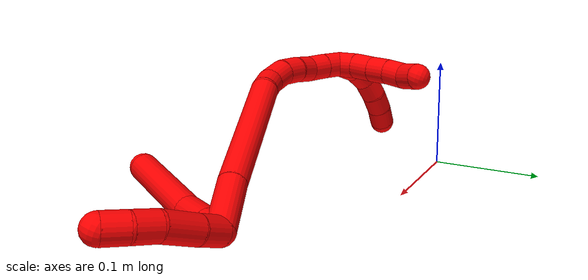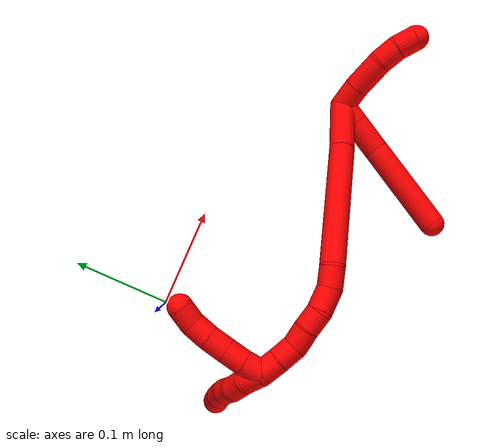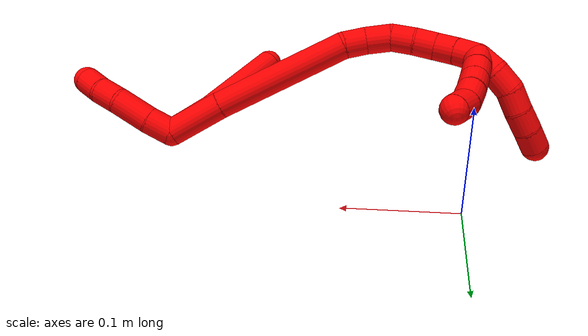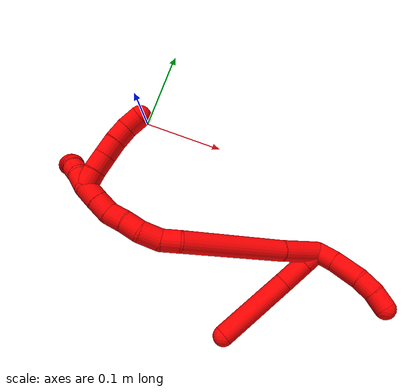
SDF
<sdf version="1.7">
 <world name="default">
  <model name="2">
   <static>0</static>
   <link name="2">
    <collision name="collision-cylinder-e_1_2_8">
     <pose>-0.006839 -0.002578 0.007982 0.312435 -0.683984 -0.112017</pose>
     <geometry><cylinder><radius>0.0125</radius><length>0.021646</length></cylinder></geometry>
     <surface>
      <friction><ode><mu>1.16</mu><mu2>1.16</mu2><slip1>0</slip1><slip2>0</slip2></ode></friction>
      <contact><ode><kp>1e+06</kp><kd>1</kd><max_vel>0</max_vel><min_depth>0.001</min_depth></ode></contact>
     </surface>
    </collision>
    <visual name="visual-cylinder-e_1_2_8">
     <pose>-0.006839 -0.002578 0.007982 0.312435 -0.683984 -0.112017</pose>
     <geometry><cylinder><radius>0.0125</radius><length>0.021646</length></cylinder></geometry>
     <material><ambient>1 0 0 1</ambient></material>
    </visual>
    <collision name="collision-cylinder-e_2_8_9">
     <pose>-0.024464 -0.009035 0.028682 0.295975 -0.681559 -0.105631</pose>
     <geometry><cylinder><radius>0.0125</radius><length>0.03424</length></cylinder></geometry>
     <surface>
      <friction><ode><mu>1.16</mu><mu2>1.16</mu2><slip1>0</slip1><slip2>0</slip2></ode></friction>
      <contact><ode><kp>1e+06</kp><kd>1</kd><max_vel>0</max_vel><min_depth>0.001</min_depth></ode></contact>
     </surface>
    </collision>
    <visual name="visual-cylinder-e_2_8_9">
     <pose>-0.024464 -0.009035 0.028682 0.295975 -0.681559 -0.105631</pose>
     <geometry><cylinder><radius>0.0125</radius><length>0.03424</length></cylinder></geometry>
     <material><ambient>1 0 0 1</ambient></material>
    </visual>
    <collision name="collision-cylinder-e_3_9_6">
     <pose>-0.065012 -0.017558 0.077551 0.127809 -0.684753 -0.045607</pose>
     <geometry><cylinder><radius>0.0125</radius><length>0.094114</length></cylinder></geometry>
     <surface>
      <friction><ode><mu>1.16</mu><mu2>1.16</mu2><slip1>0</slip1><slip2>0</slip2></ode></friction>
      <contact><ode><kp>1e+06</kp><kd>1</kd><max_vel>0</max_vel><min_depth>0.001</min_depth></ode></contact>
     </surface>
    </collision>
    <visual name="visual-cylinder-e_3_9_6">
     <pose>-0.065012 -0.017558 0.077551 0.127809 -0.684753 -0.045607</pose>
     <geometry><cylinder><radius>0.0125</radius><length>0.094114</length></cylinder></geometry>
     <material><ambient>1 0 0 1</ambient></material>
    </visual>
    <collision name="collision-cylinder-e_1_2_10">
     <pose>0.010418 0.002038 0.005236 -0.371157 1.07618 -0.223166</pose>
     <geometry><cylinder><radius>0.0125</radius><length>0.023674</length></cylinder></geometry>
     <surface>
      <friction><ode><mu>1.16</mu><mu2>1.16</mu2><slip1>0</slip1><slip2>0</slip2></ode></friction>
      <contact><ode><kp>1e+06</kp><kd>1</kd><max_vel>0</max_vel><min_depth>0.001</min_depth></ode></contact>
     </surface>
    </collision>
    <visual name="visual-cylinder-e_1_2_10">
     <pose>0.010418 0.002038 0.005236 -0.371157 1.07618 -0.223166</pose>
     <geometry><cylinder><radius>0.0125</radius><length>0.023674</length></cylinder></geometry>
     <material><ambient>1 0 0 1</ambient></material>
    </visual>
    <collision name="collision-cylinder-e_2_10_11">
     <pose>0.035016 0.006696 0.019677 -0.277361 0.977096 -0.148105</pose>
     <geometry><cylinder><radius>0.0125</radius><length>0.034213</length></cylinder></geometry>
     <surface>
      <friction><ode><mu>1.16</mu><mu2>1.16</mu2><slip1>0</slip1><slip2>0</slip2></ode></friction>
      <contact><ode><kp>1e+06</kp><kd>1</kd><max_vel>0</max_vel><min_depth>0.001</min_depth></ode></contact>
     </surface>
    </collision>
    <visual name="visual-cylinder-e_2_10_11">
     <pose>0.035016 0.006696 0.019677 -0.277361 0.977096 -0.148105</pose>
     <geometry><cylinder><radius>0.0125</radius><length>0.034213</length></cylinder></geometry>
     <material><ambient>1 0 0 1</ambient></material>
    </visual>
    <collision name="collision-cylinder-e_3_11_12">
     <pose>0.057618 0.008857 0.035452 0.069916 0.907105 0.034091</pose>
     <geometry><cylinder><radius>0.0125</radius><length>0.021386</length></cylinder></geometry>
     <surface>
      <friction><ode><mu>1.16</mu><mu2>1.16</mu2><slip1>0</slip1><slip2>0</slip2></ode></friction>
      <contact><ode><kp>1e+06</kp><kd>1</kd><max_vel>0</max_vel><min_depth>0.001</min_depth></ode></contact>
     </surface>
    </collision>
    <visual name="visual-cylinder-e_3_11_12">
     <pose>0.057618 0.008857 0.035452 0.069916 0.907105 0.034091</pose>
     <geometry><cylinder><radius>0.0125</radius><length>0.021386</length></cylinder></geometry>
     <material><ambient>1 0 0 1</ambient></material>
    </visual>
    <collision name="collision-cylinder-e_4_12_5">
     <pose>0.072849 0.006841 0.049681 0.2004 0.716693 0.07527</pose>
     <geometry><cylinder><radius>0.0125</radius><length>0.020727</length></cylinder></geometry>
     <surface>
      <friction><ode><mu>1.16</mu><mu2>1.16</mu2><slip1>0</slip1><slip2>0</slip2></ode></friction>
      <contact><ode><kp>1e+06</kp><kd>1</kd><max_vel>0</max_vel><min_depth>0.001</min_depth></ode></contact>
     </surface>
    </collision>
    <visual name="visual-cylinder-e_4_12_5">
     <pose>0.072849 0.006841 0.049681 0.2004 0.716693 0.07527</pose>
     <geometry><cylinder><radius>0.0125</radius><length>0.020727</length></cylinder></geometry>
     <material><ambient>1 0 0 1</ambient></material>
    </visual>
    <collision name="collision-cylinder-e_1_2_13">
     <pose>-0.021454 0.010495 0.007704 -0.937551 -1.02538 0.555402</pose>
     <geometry><cylinder><radius>0.0125</radius><length>0.050191</length></cylinder></geometry>
     <surface>
      <friction><ode><mu>1.16</mu><mu2>1.16</mu2><slip1>0</slip1><slip2>0</slip2></ode></friction>
      <contact><ode><kp>1e+06</kp><kd>1</kd><max_vel>0</max_vel><min_depth>0.001</min_depth></ode></contact>
     </surface>
    </collision>
    <visual name="visual-cylinder-e_1_2_13">
     <pose>-0.021454 0.010495 0.007704 -0.937551 -1.02538 0.555402</pose>
     <geometry><cylinder><radius>0.0125</radius><length>0.050191</length></cylinder></geometry>
     <material><ambient>1 0 0 1</ambient></material>
    </visual>
    <collision name="collision-cylinder-e_2_13_14">
     <pose>-0.097964 0.045965 0.031027 -1.01194 -1.0795 0.640992</pose>
     <geometry><cylinder><radius>0.0125</radius><length>0.124881</length></cylinder></geometry>
     <surface>
      <friction><ode><mu>1.16</mu><mu2>1.16</mu2><slip1>0</slip1><slip2>0</slip2></ode></friction>
      <contact><ode><kp>1e+06</kp><kd>1</kd><max_vel>0</max_vel><min_depth>0.001</min_depth></ode></contact>
     </surface>
    </collision>
    <visual name="visual-cylinder-e_2_13_14">
     <pose>-0.097964 0.045965 0.031027 -1.01194 -1.0795 0.640992</pose>
     <geometry><cylinder><radius>0.0125</radius><length>0.124881</length></cylinder></geometry>
     <material><ambient>1 0 0 1</ambient></material>
    </visual>
    <collision name="collision-cylinder-e_3_14_15">
     <pose>-0.163273 0.072605 0.048367 -0.768723 -1.34147 0.621099</pose>
     <geometry><cylinder><radius>0.0125</radius><length>0.021061</length></cylinder></geometry>
     <surface>
      <friction><ode><mu>1.16</mu><mu2>1.16</mu2><slip1>0</slip1><slip2>0</slip2></ode></friction>
      <contact><ode><kp>1e+06</kp><kd>1</kd><max_vel>0</max_vel><min_depth>0.001</min_depth></ode></contact>
     </surface>
    </collision>
    <visual name="visual-cylinder-e_3_14_15">
     <pose>-0.163273 0.072605 0.048367 -0.768723 -1.34147 0.621099</pose>
     <geometry><cylinder><radius>0.0125</radius><length>0.021061</length></cylinder></geometry>
     <material><ambient>1 0 0 1</ambient></material>
    </visual>
    <collision name="collision-cylinder-e_4_15_16">
     <pose>-0.184726 0.077942 0.048805 -1.90688 -1.23645 1.57263</pose>
     <geometry><cylinder><radius>0.0125</radius><length>0.023709</length></cylinder></geometry>
     <surface>
      <friction><ode><mu>1.16</mu><mu2>1.16</mu2><slip1>0</slip1><slip2>0</slip2></ode></friction>
      <contact><ode><kp>1e+06</kp><kd>1</kd><max_vel>0</max_vel><min_depth>0.001</min_depth></ode></contact>
     </surface>
    </collision>
    <visual name="visual-cylinder-e_4_15_16">
     <pose>-0.184726 0.077942 0.048805 -1.90688 -1.23645 1.57263</pose>
     <geometry><cylinder><radius>0.0125</radius><length>0.023709</length></cylinder></geometry>
     <material><ambient>1 0 0 1</ambient></material>
    </visual>
    <collision name="collision-cylinder-e_5_16_17">
     <pose>-0.205148 0.083196 0.043908 -2.72907 -1.16668 2.52755</pose>
     <geometry><cylinder><radius>0.0125</radius><length>0.020063</length></cylinder></geometry>
     <surface>
      <friction><ode><mu>1.16</mu><mu2>1.16</mu2><slip1>0</slip1><slip2>0</slip2></ode></friction>
      <contact><ode><kp>1e+06</kp><kd>1</kd><max_vel>0</max_vel><min_depth>0.001</min_depth></ode></contact>
     </surface>
    </collision>
    <visual name="visual-cylinder-e_5_16_17">
     <pose>-0.205148 0.083196 0.043908 -2.72907 -1.16668 2.52755</pose>
     <geometry><cylinder><radius>0.0125</radius><length>0.020063</length></cylinder></geometry>
     <material><ambient>1 0 0 1</ambient></material>
    </visual>
    <collision name="collision-cylinder-e_6_17_18">
     <pose>-0.223862 0.085079 0.037066 -3.04861 -1.24159 3.01165</pose>
     <geometry><cylinder><radius>0.0125</radius><length>0.02006</length></cylinder></geometry>
     <surface>
      <friction><ode><mu>1.16</mu><mu2>1.16</mu2><slip1>0</slip1><slip2>0</slip2></ode></friction>
      <contact><ode><kp>1e+06</kp><kd>1</kd><max_vel>0</max_vel><min_depth>0.001</min_depth></ode></contact>
     </surface>
    </collision>
    <visual name="visual-cylinder-e_6_17_18">
     <pose>-0.223862 0.085079 0.037066 -3.04861 -1.24159 3.01165</pose>
     <geometry><cylinder><radius>0.0125</radius><length>0.02006</length></cylinder></geometry>
     <material><ambient>1 0 0 1</ambient></material>
    </visual>
    <collision name="collision-cylinder-e_7_18_19">
     <pose>-0.241383 0.087952 0.028453 -2.69593 -0.93164 2.29466</pose>
     <geometry><cylinder><radius>0.0125</radius><length>0.020008</length></cylinder></geometry>
     <surface>
      <friction><ode><mu>1.16</mu><mu2>1.16</mu2><slip1>0</slip1><slip2>0</slip2></ode></friction>
      <contact><ode><kp>1e+06</kp><kd>1</kd><max_vel>0</max_vel><min_depth>0.001</min_depth></ode></contact>
     </surface>
    </collision>
    <visual name="visual-cylinder-e_7_18_19">
     <pose>-0.241383 0.087952 0.028453 -2.69593 -0.93164 2.29466</pose>
     <geometry><cylinder><radius>0.0125</radius><length>0.020008</length></cylinder></geometry>
     <material><ambient>1 0 0 1</ambient></material>
    </visual>
    <collision name="collision-cylinder-e_8_19_1">
     <pose>-0.257302 0.092821 0.017346 -2.75985 -0.907423 2.38706</pose>
     <geometry><cylinder><radius>0.0125</radius><length>0.020028</length></cylinder></geometry>
     <surface>
      <friction><ode><mu>1.16</mu><mu2>1.16</mu2><slip1>0</slip1><slip2>0</slip2></ode></friction>
      <contact><ode><kp>1e+06</kp><kd>1</kd><max_vel>0</max_vel><min_depth>0.001</min_depth></ode></contact>
     </surface>
    </collision>
    <visual name="visual-cylinder-e_8_19_1">
     <pose>-0.257302 0.092821 0.017346 -2.75985 -0.907423 2.38706</pose>
     <geometry><cylinder><radius>0.0125</radius><length>0.020028</length></cylinder></geometry>
     <material><ambient>1 0 0 1</ambient></material>
    </visual>
    <collision name="collision-cylinder-e_1_1_20">
     <pose>-0.271748 0.093944 0.004164 2.98543 -0.714943 -2.72863</pose>
     <geometry><cylinder><radius>0.0125</radius><length>0.02</length></cylinder></geometry>
     <surface>
      <friction><ode><mu>1.16</mu><mu2>1.16</mu2><slip1>0</slip1><slip2>0</slip2></ode></friction>
      <contact><ode><kp>1e+06</kp><kd>1</kd><max_vel>0</max_vel><min_depth>0.001</min_depth></ode></contact>
     </surface>
    </collision>
    <visual name="visual-cylinder-e_1_1_20">
     <pose>-0.271748 0.093944 0.004164 2.98543 -0.714943 -2.72863</pose>
     <geometry><cylinder><radius>0.0125</radius><length>0.02</length></cylinder></geometry>
     <material><ambient>1 0 0 1</ambient></material>
    </visual>
    <collision name="collision-cylinder-e_2_20_21">
     <pose>-0.284829 0.088426 -0.009504 2.53107 -0.710956 -1.73402</pose>
     <geometry><cylinder><radius>0.0125</radius><length>0.02</length></cylinder></geometry>
     <surface>
      <friction><ode><mu>1.16</mu><mu2>1.16</mu2><slip1>0</slip1><slip2>0</slip2></ode></friction>
      <contact><ode><kp>1e+06</kp><kd>1</kd><max_vel>0</max_vel><min_depth>0.001</min_depth></ode></contact>
     </surface>
    </collision>
    <visual name="visual-cylinder-e_2_20_21">
     <pose>-0.284829 0.088426 -0.009504 2.53107 -0.710956 -1.73402</pose>
     <geometry><cylinder><radius>0.0125</radius><length>0.02</length></cylinder></geometry>
     <material><ambient>1 0 0 1</ambient></material>
    </visual>
    <collision name="collision-cylinder-e_3_21_22">
     <pose>-0.295832 0.077401 -0.021656 2.29779 -0.464168 -0.969314</pose>
     <geometry><cylinder><radius>0.0125</radius><length>0.02</length></cylinder></geometry>
     <surface>
      <friction><ode><mu>1.16</mu><mu2>1.16</mu2><slip1>0</slip1><slip2>0</slip2></ode></friction>
      <contact><ode><kp>1e+06</kp><kd>1</kd><max_vel>0</max_vel><min_depth>0.001</min_depth></ode></contact>
     </surface>
    </collision>
    <visual name="visual-cylinder-e_3_21_22">
     <pose>-0.295832 0.077401 -0.021656 2.29779 -0.464168 -0.969314</pose>
     <geometry><cylinder><radius>0.0125</radius><length>0.02</length></cylinder></geometry>
     <material><ambient>1 0 0 1</ambient></material>
    </visual>
    <collision name="collision-cylinder-e_4_22_23">
     <pose>-0.305558 0.063564 -0.032208 2.14311 -0.552673 -0.959112</pose>
     <geometry><cylinder><radius>0.0125</radius><length>0.02</length></cylinder></geometry>
     <surface>
      <friction><ode><mu>1.16</mu><mu2>1.16</mu2><slip1>0</slip1><slip2>0</slip2></ode></friction>
      <contact><ode><kp>1e+06</kp><kd>1</kd><max_vel>0</max_vel><min_depth>0.001</min_depth></ode></contact>
     </surface>
    </collision>
    <visual name="visual-cylinder-e_4_22_23">
     <pose>-0.305558 0.063564 -0.032208 2.14311 -0.552673 -0.959112</pose>
     <geometry><cylinder><radius>0.0125</radius><length>0.02</length></cylinder></geometry>
     <material><ambient>1 0 0 1</ambient></material>
    </visual>
    <collision name="collision-cylinder-e_5_23_4">
     <pose>-0.315988 0.048622 -0.040357 1.9974 -0.544467 -0.818154</pose>
     <geometry><cylinder><radius>0.0125</radius><length>0.02</length></cylinder></geometry>
     <surface>
      <friction><ode><mu>1.16</mu><mu2>1.16</mu2><slip1>0</slip1><slip2>0</slip2></ode></friction>
      <contact><ode><kp>1e+06</kp><kd>1</kd><max_vel>0</max_vel><min_depth>0.001</min_depth></ode></contact>
     </surface>
    </collision>
    <visual name="visual-cylinder-e_5_23_4">
     <pose>-0.315988 0.048622 -0.040357 1.9974 -0.544467 -0.818154</pose>
     <geometry><cylinder><radius>0.0125</radius><length>0.02</length></cylinder></geometry>
     <material><ambient>1 0 0 1</ambient></material>
    </visual>
    <collision name="collision-cylinder-e_1_1_24">
     <pose>-0.262251 0.098247 0.002592 -2.80817 0.298509 -1.45857</pose>
     <geometry><cylinder><radius>0.0125</radius><length>0.02</length></cylinder></geometry>
     <surface>
      <friction><ode><mu>1.16</mu><mu2>1.16</mu2><slip1>0</slip1><slip2>0</slip2></ode></friction>
      <contact><ode><kp>1e+06</kp><kd>1</kd><max_vel>0</max_vel><min_depth>0.001</min_depth></ode></contact>
     </surface>
    </collision>
    <visual name="visual-cylinder-e_1_1_24">
     <pose>-0.262251 0.098247 0.002592 -2.80817 0.298509 -1.45857</pose>
     <geometry><cylinder><radius>0.0125</radius><length>0.02</length></cylinder></geometry>
     <material><ambient>1 0 0 1</ambient></material>
    </visual>
    <collision name="collision-cylinder-e_2_24_25">
     <pose>-0.255752 0.103635 -0.015508 -2.89728 0.363789 -1.96446</pose>
     <geometry><cylinder><radius>0.0125</radius><length>0.02</length></cylinder></geometry>
     <surface>
      <friction><ode><mu>1.16</mu><mu2>1.16</mu2><slip1>0</slip1><slip2>0</slip2></ode></friction>
      <contact><ode><kp>1e+06</kp><kd>1</kd><max_vel>0</max_vel><min_depth>0.001</min_depth></ode></contact>
     </surface>
    </collision>
    <visual name="visual-cylinder-e_2_24_25">
     <pose>-0.255752 0.103635 -0.015508 -2.89728 0.363789 -1.96446</pose>
     <geometry><cylinder><radius>0.0125</radius><length>0.02</length></cylinder></geometry>
     <material><ambient>1 0 0 1</ambient></material>
    </visual>
    <collision name="collision-cylinder-e_3_25_26">
     <pose>-0.248436 0.108442 -0.033486 -2.86322 0.385313 -1.89601</pose>
     <geometry><cylinder><radius>0.0125</radius><length>0.02</length></cylinder></geometry>
     <surface>
      <friction><ode><mu>1.16</mu><mu2>1.16</mu2><slip1>0</slip1><slip2>0</slip2></ode></friction>
      <contact><ode><kp>1e+06</kp><kd>1</kd><max_vel>0</max_vel><min_depth>0.001</min_depth></ode></contact>
     </surface>
    </collision>
    <visual name="visual-cylinder-e_3_25_26">
     <pose>-0.248436 0.108442 -0.033486 -2.86322 0.385313 -1.89601</pose>
     <geometry><cylinder><radius>0.0125</radius><length>0.02</length></cylinder></geometry>
     <material><ambient>1 0 0 1</ambient></material>
    </visual>
    <collision name="collision-cylinder-e_4_26_27">
     <pose>-0.24022 0.112822 -0.051158 -2.93531 0.461932 -2.3123</pose>
     <geometry><cylinder><radius>0.0125</radius><length>0.02</length></cylinder></geometry>
     <surface>
      <friction><ode><mu>1.16</mu><mu2>1.16</mu2><slip1>0</slip1><slip2>0</slip2></ode></friction>
      <contact><ode><kp>1e+06</kp><kd>1</kd><max_vel>0</max_vel><min_depth>0.001</min_depth></ode></contact>
     </surface>
    </collision>
    <visual name="visual-cylinder-e_4_26_27">
     <pose>-0.24022 0.112822 -0.051158 -2.93531 0.461932 -2.3123</pose>
     <geometry><cylinder><radius>0.0125</radius><length>0.02</length></cylinder></geometry>
     <material><ambient>1 0 0 1</ambient></material>
    </visual>
    <collision name="collision-cylinder-e_5_27_3">
     <pose>-0.229161 0.118084 -0.066603 -2.6677 0.721111 -2.00229</pose>
     <geometry><cylinder><radius>0.0125</radius><length>0.02</length></cylinder></geometry>
     <surface>
      <friction><ode><mu>1.16</mu><mu2>1.16</mu2><slip1>0</slip1><slip2>0</slip2></ode></friction>
      <contact><ode><kp>1e+06</kp><kd>1</kd><max_vel>0</max_vel><min_depth>0.001</min_depth></ode></contact>
     </surface>
    </collision>
    <visual name="visual-cylinder-e_5_27_3">
     <pose>-0.229161 0.118084 -0.066603 -2.6677 0.721111 -2.00229</pose>
     <geometry><cylinder><radius>0.0125</radius><length>0.02</length></cylinder></geometry>
     <material><ambient>1 0 0 1</ambient></material>
    </visual>
    <collision name="collision-sphere-3">
     <pose>-0.222559 0.121511 -0.073286 0 -0 0</pose>
     <geometry><sphere><radius>0.0125</radius></sphere></geometry>
     <surface>
      <friction><ode><mu>1.16</mu><mu2>1.16</mu2><slip1>0</slip1><slip2>0</slip2></ode></friction>
      <contact><ode><kp>1e+06</kp><kd>1</kd><max_vel>0</max_vel><min_depth>0.001</min_depth></ode></contact>
     </surface>
    </collision>
    <visual name="visual-sphere-3">
     <pose>-0.222559 0.121511 -0.073286 0 -0 0</pose>
     <geometry><sphere><radius>0.0125</radius></sphere></geometry>
     <material><ambient>1 0 0 1</ambient></material>
    </visual>
    <collision name="collision-sphere-27">
     <pose>-0.235764 0.114656 -0.05992 0 -0 0</pose>
     <geometry><sphere><radius>0.0125</radius></sphere></geometry>
     <surface>
      <friction><ode><mu>1.16</mu><mu2>1.16</mu2><slip1>0</slip1><slip2>0</slip2></ode></friction>
      <contact><ode><kp>1e+06</kp><kd>1</kd><max_vel>0</max_vel><min_depth>0.001</min_depth></ode></contact>
     </surface>
    </collision>
    <visual name="visual-sphere-27">
     <pose>-0.235764 0.114656 -0.05992 0 -0 0</pose>
     <geometry><sphere><radius>0.0125</radius></sphere></geometry>
     <material><ambient>1 0 0 1</ambient></material>
    </visual>
    <collision name="collision-sphere-26">
     <pose>-0.244677 0.110989 -0.042396 0 -0 0</pose>
     <geometry><sphere><radius>0.0125</radius></sphere></geometry>
     <surface>
      <friction><ode><mu>1.16</mu><mu2>1.16</mu2><slip1>0</slip1><slip2>0</slip2></ode></friction>
      <contact><ode><kp>1e+06</kp><kd>1</kd><max_vel>0</max_vel><min_depth>0.001</min_depth></ode></contact>
     </surface>
    </collision>
    <visual name="visual-sphere-26">
     <pose>-0.244677 0.110989 -0.042396 0 -0 0</pose>
     <geometry><sphere><radius>0.0125</radius></sphere></geometry>
     <material><ambient>1 0 0 1</ambient></material>
    </visual>
    <collision name="collision-sphere-25">
     <pose>-0.252194 0.105896 -0.024576 0 -0 0</pose>
     <geometry><sphere><radius>0.0125</radius></sphere></geometry>
     <surface>
      <friction><ode><mu>1.16</mu><mu2>1.16</mu2><slip1>0</slip1><slip2>0</slip2></ode></friction>
      <contact><ode><kp>1e+06</kp><kd>1</kd><max_vel>0</max_vel><min_depth>0.001</min_depth></ode></contact>
     </surface>
    </collision>
    <visual name="visual-sphere-25">
     <pose>-0.252194 0.105896 -0.024576 0 -0 0</pose>
     <geometry><sphere><radius>0.0125</radius></sphere></geometry>
     <material><ambient>1 0 0 1</ambient></material>
    </visual>
    <collision name="collision-sphere-24">
     <pose>-0.25931 0.101375 -0.00644 0 -0 0</pose>
     <geometry><sphere><radius>0.0125</radius></sphere></geometry>
     <surface>
      <friction><ode><mu>1.16</mu><mu2>1.16</mu2><slip1>0</slip1><slip2>0</slip2></ode></friction>
      <contact><ode><kp>1e+06</kp><kd>1</kd><max_vel>0</max_vel><min_depth>0.001</min_depth></ode></contact>
     </surface>
    </collision>
    <visual name="visual-sphere-24">
     <pose>-0.25931 0.101375 -0.00644 0 -0 0</pose>
     <geometry><sphere><radius>0.0125</radius></sphere></geometry>
     <material><ambient>1 0 0 1</ambient></material>
    </visual>
    <collision name="collision-sphere-4">
     <pose>-0.321167 0.040835 -0.043897 0 -0 0</pose>
     <geometry><sphere><radius>0.0125</radius></sphere></geometry>
     <surface>
      <friction><ode><mu>1.16</mu><mu2>1.16</mu2><slip1>0</slip1><slip2>0</slip2></ode></friction>
      <contact><ode><kp>1e+06</kp><kd>1</kd><max_vel>0</max_vel><min_depth>0.001</min_depth></ode></contact>
     </surface>
    </collision>
    <visual name="visual-sphere-4">
     <pose>-0.321167 0.040835 -0.043897 0 -0 0</pose>
     <geometry><sphere><radius>0.0125</radius></sphere></geometry>
     <material><ambient>1 0 0 1</ambient></material>
    </visual>
    <collision name="collision-sphere-23">
     <pose>-0.310808 0.056409 -0.036818 0 -0 0</pose>
     <geometry><sphere><radius>0.0125</radius></sphere></geometry>
     <surface>
      <friction><ode><mu>1.16</mu><mu2>1.16</mu2><slip1>0</slip1><slip2>0</slip2></ode></friction>
      <contact><ode><kp>1e+06</kp><kd>1</kd><max_vel>0</max_vel><min_depth>0.001</min_depth></ode></contact>
     </surface>
    </collision>
    <visual name="visual-sphere-23">
     <pose>-0.310808 0.056409 -0.036818 0 -0 0</pose>
     <geometry><sphere><radius>0.0125</radius></sphere></geometry>
     <material><ambient>1 0 0 1</ambient></material>
    </visual>
    <collision name="collision-sphere-22">
     <pose>-0.300309 0.070719 -0.027599 0 -0 0</pose>
     <geometry><sphere><radius>0.0125</radius></sphere></geometry>
     <surface>
      <friction><ode><mu>1.16</mu><mu2>1.16</mu2><slip1>0</slip1><slip2>0</slip2></ode></friction>
      <contact><ode><kp>1e+06</kp><kd>1</kd><max_vel>0</max_vel><min_depth>0.001</min_depth></ode></contact>
     </surface>
    </collision>
    <visual name="visual-sphere-22">
     <pose>-0.300309 0.070719 -0.027599 0 -0 0</pose>
     <geometry><sphere><radius>0.0125</radius></sphere></geometry>
     <material><ambient>1 0 0 1</ambient></material>
    </visual>
    <collision name="collision-sphere-21">
     <pose>-0.291355 0.084082 -0.015713 0 -0 0</pose>
     <geometry><sphere><radius>0.0125</radius></sphere></geometry>
     <surface>
      <friction><ode><mu>1.16</mu><mu2>1.16</mu2><slip1>0</slip1><slip2>0</slip2></ode></friction>
      <contact><ode><kp>1e+06</kp><kd>1</kd><max_vel>0</max_vel><min_depth>0.001</min_depth></ode></contact>
     </surface>
    </collision>
    <visual name="visual-sphere-21">
     <pose>-0.291355 0.084082 -0.015713 0 -0 0</pose>
     <geometry><sphere><radius>0.0125</radius></sphere></geometry>
     <material><ambient>1 0 0 1</ambient></material>
    </visual>
    <collision name="collision-sphere-20">
     <pose>-0.278304 0.09277 -0.003296 0 -0 0</pose>
     <geometry><sphere><radius>0.0125</radius></sphere></geometry>
     <surface>
      <friction><ode><mu>1.16</mu><mu2>1.16</mu2><slip1>0</slip1><slip2>0</slip2></ode></friction>
      <contact><ode><kp>1e+06</kp><kd>1</kd><max_vel>0</max_vel><min_depth>0.001</min_depth></ode></contact>
     </surface>
    </collision>
    <visual name="visual-sphere-20">
     <pose>-0.278304 0.09277 -0.003296 0 -0 0</pose>
     <geometry><sphere><radius>0.0125</radius></sphere></geometry>
     <material><ambient>1 0 0 1</ambient></material>
    </visual>
    <collision name="collision-sphere-11">
     <pose>0.049195 0.009317 0.028881 0 -0 0</pose>
     <geometry><sphere><radius>0.0125</radius></sphere></geometry>
     <surface>
      <friction><ode><mu>1.16</mu><mu2>1.16</mu2><slip1>0</slip1><slip2>0</slip2></ode></friction>
      <contact><ode><kp>1e+06</kp><kd>1</kd><max_vel>0</max_vel><min_depth>0.001</min_depth></ode></contact>
     </surface>
    </collision>
    <visual name="visual-sphere-11">
     <pose>0.049195 0.009317 0.028881 0 -0 0</pose>
     <geometry><sphere><radius>0.0125</radius></sphere></geometry>
     <material><ambient>1 0 0 1</ambient></material>
    </visual>
    <collision name="collision-sphere-10">
     <pose>0.020836 0.004076 0.010473 0 -0 0</pose>
     <geometry><sphere><radius>0.0125</radius></sphere></geometry>
     <surface>
      <friction><ode><mu>1.16</mu><mu2>1.16</mu2><slip1>0</slip1><slip2>0</slip2></ode></friction>
      <contact><ode><kp>1e+06</kp><kd>1</kd><max_vel>0</max_vel><min_depth>0.001</min_depth></ode></contact>
     </surface>
    </collision>
    <visual name="visual-sphere-10">
     <pose>0.020836 0.004076 0.010473 0 -0 0</pose>
     <geometry><sphere><radius>0.0125</radius></sphere></geometry>
     <material><ambient>1 0 0 1</ambient></material>
    </visual>
    <collision name="collision-sphere-6">
     <pose>-0.094775 -0.022204 0.113703 0 -0 0</pose>
     <geometry><sphere><radius>0.0125</radius></sphere></geometry>
     <surface>
      <friction><ode><mu>1.16</mu><mu2>1.16</mu2><slip1>0</slip1><slip2>0</slip2></ode></friction>
      <contact><ode><kp>1e+06</kp><kd>1</kd><max_vel>0</max_vel><min_depth>0.001</min_depth></ode></contact>
     </surface>
    </collision>
    <visual name="visual-sphere-6">
     <pose>-0.094775 -0.022204 0.113703 0 -0 0</pose>
     <geometry><sphere><radius>0.0125</radius></sphere></geometry>
     <material><ambient>1 0 0 1</ambient></material>
    </visual>
    <collision name="collision-sphere-9">
     <pose>-0.035249 -0.012913 0.041399 0 -0 0</pose>
     <geometry><sphere><radius>0.0125</radius></sphere></geometry>
     <surface>
      <friction><ode><mu>1.16</mu><mu2>1.16</mu2><slip1>0</slip1><slip2>0</slip2></ode></friction>
      <contact><ode><kp>1e+06</kp><kd>1</kd><max_vel>0</max_vel><min_depth>0.001</min_depth></ode></contact>
     </surface>
    </collision>
    <visual name="visual-sphere-9">
     <pose>-0.035249 -0.012913 0.041399 0 -0 0</pose>
     <geometry><sphere><radius>0.0125</radius></sphere></geometry>
     <material><ambient>1 0 0 1</ambient></material>
    </visual>
    <collision name="collision-sphere-2">
     <geometry><sphere><radius>0.0125</radius></sphere></geometry>
     <surface>
      <friction><ode><mu>1.16</mu><mu2>1.16</mu2><slip1>0</slip1><slip2>0</slip2></ode></friction>
      <contact><ode><kp>1e+06</kp><kd>1</kd><max_vel>0</max_vel><min_depth>0.001</min_depth></ode></contact>
     </surface>
    </collision>
    <visual name="visual-sphere-2">
     <geometry><sphere><radius>0.0125</radius></sphere></geometry>
     <material><ambient>1 0 0 1</ambient></material>
    </visual>
    <collision name="collision-sphere-19">
     <pose>-0.249412 0.090524 0.023068 0 -0 0</pose>
     <geometry><sphere><radius>0.0125</radius></sphere></geometry>
     <surface>
      <friction><ode><mu>1.16</mu><mu2>1.16</mu2><slip1>0</slip1><slip2>0</slip2></ode></friction>
      <contact><ode><kp>1e+06</kp><kd>1</kd><max_vel>0</max_vel><min_depth>0.001</min_depth></ode></contact>
     </surface>
    </collision>
    <visual name="visual-sphere-19">
     <pose>-0.249412 0.090524 0.023068 0 -0 0</pose>
     <geometry><sphere><radius>0.0125</radius></sphere></geometry>
     <material><ambient>1 0 0 1</ambient></material>
    </visual>
    <collision name="collision-sphere-8">
     <pose>-0.013678 -0.005157 0.015965 0 -0 0</pose>
     <geometry><sphere><radius>0.0125</radius></sphere></geometry>
     <surface>
      <friction><ode><mu>1.16</mu><mu2>1.16</mu2><slip1>0</slip1><slip2>0</slip2></ode></friction>
      <contact><ode><kp>1e+06</kp><kd>1</kd><max_vel>0</max_vel><min_depth>0.001</min_depth></ode></contact>
     </surface>
    </collision>
    <visual name="visual-sphere-8">
     <pose>-0.013678 -0.005157 0.015965 0 -0 0</pose>
     <geometry><sphere><radius>0.0125</radius></sphere></geometry>
     <material><ambient>1 0 0 1</ambient></material>
    </visual>
    <collision name="collision-sphere-12">
     <pose>0.066041 0.008396 0.042024 0 -0 0</pose>
     <geometry><sphere><radius>0.0125</radius></sphere></geometry>
     <surface>
      <friction><ode><mu>1.16</mu><mu2>1.16</mu2><slip1>0</slip1><slip2>0</slip2></ode></friction>
      <contact><ode><kp>1e+06</kp><kd>1</kd><max_vel>0</max_vel><min_depth>0.001</min_depth></ode></contact>
     </surface>
    </collision>
    <visual name="visual-sphere-12">
     <pose>0.066041 0.008396 0.042024 0 -0 0</pose>
     <geometry><sphere><radius>0.0125</radius></sphere></geometry>
     <material><ambient>1 0 0 1</ambient></material>
    </visual>
    <collision name="collision-sphere-5">
     <pose>0.079657 0.005286 0.057338 0 -0 0</pose>
     <geometry><sphere><radius>0.0125</radius></sphere></geometry>
     <surface>
      <friction><ode><mu>1.16</mu><mu2>1.16</mu2><slip1>0</slip1><slip2>0</slip2></ode></friction>
      <contact><ode><kp>1e+06</kp><kd>1</kd><max_vel>0</max_vel><min_depth>0.001</min_depth></ode></contact>
     </surface>
    </collision>
    <visual name="visual-sphere-5">
     <pose>0.079657 0.005286 0.057338 0 -0 0</pose>
     <geometry><sphere><radius>0.0125</radius></sphere></geometry>
     <material><ambient>1 0 0 1</ambient></material>
    </visual>
    <collision name="collision-sphere-13">
     <pose>-0.042909 0.020989 0.015408 0 -0 0</pose>
     <geometry><sphere><radius>0.0125</radius></sphere></geometry>
     <surface>
      <friction><ode><mu>1.16</mu><mu2>1.16</mu2><slip1>0</slip1><slip2>0</slip2></ode></friction>
      <contact><ode><kp>1e+06</kp><kd>1</kd><max_vel>0</max_vel><min_depth>0.001</min_depth></ode></contact>
     </surface>
    </collision>
    <visual name="visual-sphere-13">
     <pose>-0.042909 0.020989 0.015408 0 -0 0</pose>
     <geometry><sphere><radius>0.0125</radius></sphere></geometry>
     <material><ambient>1 0 0 1</ambient></material>
    </visual>
    <collision name="collision-sphere-14">
     <pose>-0.153019 0.070941 0.046646 0 -0 0</pose>
     <geometry><sphere><radius>0.0125</radius></sphere></geometry>
     <surface>
      <friction><ode><mu>1.16</mu><mu2>1.16</mu2><slip1>0</slip1><slip2>0</slip2></ode></friction>
      <contact><ode><kp>1e+06</kp><kd>1</kd><max_vel>0</max_vel><min_depth>0.001</min_depth></ode></contact>
     </surface>
    </collision>
    <visual name="visual-sphere-14">
     <pose>-0.153019 0.070941 0.046646 0 -0 0</pose>
     <geometry><sphere><radius>0.0125</radius></sphere></geometry>
     <material><ambient>1 0 0 1</ambient></material>
    </visual>
    <collision name="collision-sphere-15">
     <pose>-0.173528 0.07427 0.050088 0 -0 0</pose>
     <geometry><sphere><radius>0.0125</radius></sphere></geometry>
     <surface>
      <friction><ode><mu>1.16</mu><mu2>1.16</mu2><slip1>0</slip1><slip2>0</slip2></ode></friction>
      <contact><ode><kp>1e+06</kp><kd>1</kd><max_vel>0</max_vel><min_depth>0.001</min_depth></ode></contact>
     </surface>
    </collision>
    <visual name="visual-sphere-15">
     <pose>-0.173528 0.07427 0.050088 0 -0 0</pose>
     <geometry><sphere><radius>0.0125</radius></sphere></geometry>
     <material><ambient>1 0 0 1</ambient></material>
    </visual>
    <collision name="collision-sphere-16">
     <pose>-0.195924 0.081615 0.047522 0 -0 0</pose>
     <geometry><sphere><radius>0.0125</radius></sphere></geometry>
     <surface>
      <friction><ode><mu>1.16</mu><mu2>1.16</mu2><slip1>0</slip1><slip2>0</slip2></ode></friction>
      <contact><ode><kp>1e+06</kp><kd>1</kd><max_vel>0</max_vel><min_depth>0.001</min_depth></ode></contact>
     </surface>
    </collision>
    <visual name="visual-sphere-16">
     <pose>-0.195924 0.081615 0.047522 0 -0 0</pose>
     <geometry><sphere><radius>0.0125</radius></sphere></geometry>
     <material><ambient>1 0 0 1</ambient></material>
    </visual>
    <collision name="collision-sphere-17">
     <pose>-0.214371 0.084777 0.040295 0 -0 0</pose>
     <geometry><sphere><radius>0.0125</radius></sphere></geometry>
     <surface>
      <friction><ode><mu>1.16</mu><mu2>1.16</mu2><slip1>0</slip1><slip2>0</slip2></ode></friction>
      <contact><ode><kp>1e+06</kp><kd>1</kd><max_vel>0</max_vel><min_depth>0.001</min_depth></ode></contact>
     </surface>
    </collision>
    <visual name="visual-sphere-17">
     <pose>-0.214371 0.084777 0.040295 0 -0 0</pose>
     <geometry><sphere><radius>0.0125</radius></sphere></geometry>
     <material><ambient>1 0 0 1</ambient></material>
    </visual>
    <collision name="collision-sphere-18">
     <pose>-0.233354 0.08538 0.033837 0 -0 0</pose>
     <geometry><sphere><radius>0.0125</radius></sphere></geometry>
     <surface>
      <friction><ode><mu>1.16</mu><mu2>1.16</mu2><slip1>0</slip1><slip2>0</slip2></ode></friction>
      <contact><ode><kp>1e+06</kp><kd>1</kd><max_vel>0</max_vel><min_depth>0.001</min_depth></ode></contact>
     </surface>
    </collision>
    <visual name="visual-sphere-18">
     <pose>-0.233354 0.08538 0.033837 0 -0 0</pose>
     <geometry><sphere><radius>0.0125</radius></sphere></geometry>
     <material><ambient>1 0 0 1</ambient></material>
    </visual>
    <collision name="collision-sphere-1">
     <pose>-0.265192 0.095119 0.011623 0 -0 0</pose>
     <geometry><sphere><radius>0.0125</radius></sphere></geometry>
     <surface>
      <friction><ode><mu>1.16</mu><mu2>1.16</mu2><slip1>0</slip1><slip2>0</slip2></ode></friction>
      <contact><ode><kp>1e+06</kp><kd>1</kd><max_vel>0</max_vel><min_depth>0.001</min_depth></ode></contact>
     </surface>
    </collision>
    <visual name="visual-sphere-1">
     <pose>-0.265192 0.095119 0.011623 0 -0 0</pose>
     <geometry><sphere><radius>0.0125</radius></sphere></geometry>
     <material><ambient>1 0 0 1</ambient></material>
    </visual>
    <inertial>
     <pose>-0.129108 0.044658 0.019656 0 -0 0</pose>
     <mass>0.75</mass>
     <inertia>
      <ixx>0.000149</ixx>
      <ixy>0</ixy>
      <ixz>0</ixz>
      <iyy>0.000302</iyy>
      <iyz>0</iyz>
      <izz>0.000149</izz>
     </inertia>
    </inertial>
   </link>
   <pose>0.25707 -0.084717 0.013455 1.24888 -0.080326 0.177117</pose>
  </model>
 </world>
</sdf>
